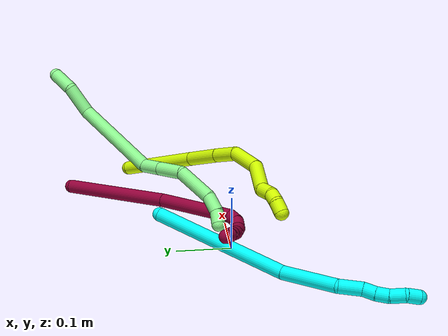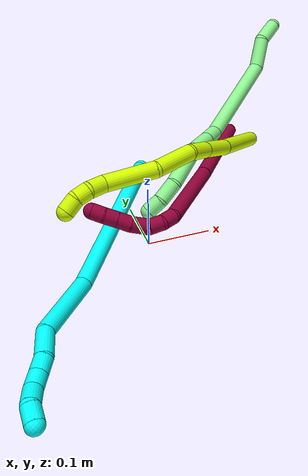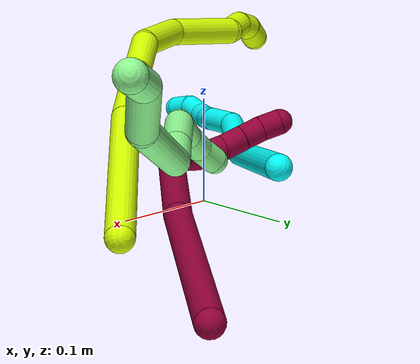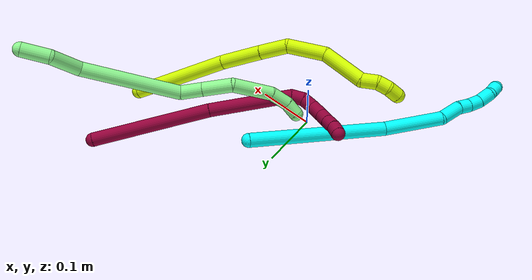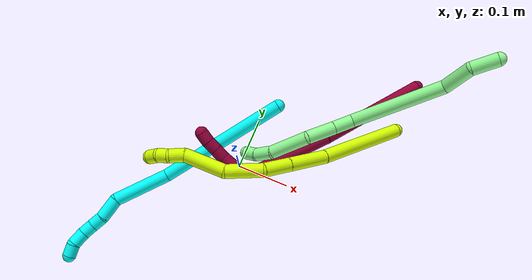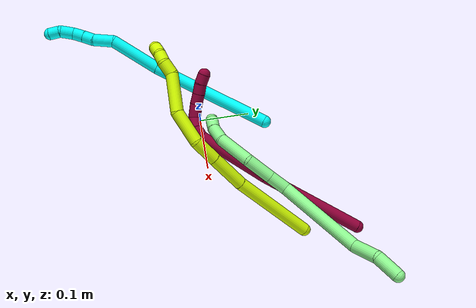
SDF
<sdf version="1.7">
 <world name="default">
  <model name="3">
   <static>0</static>
   <link name="3">
    <collision name="collision-cylinder-e_1_1_4">
     <pose>-0.0514 -0.071039 0.091895 0.658086 -0.416621 -0.144102</pose>
     <geometry><cylinder><radius>0.0125</radius><length>0.254034</length></cylinder></geometry>
     <surface>
      <friction><ode><mu>1.16</mu><mu2>1.16</mu2><slip1>0</slip1><slip2>0</slip2></ode></friction>
      <contact><ode><kp>1e+06</kp><kd>1</kd><max_vel>0</max_vel><min_depth>0.001</min_depth></ode></contact>
     </surface>
    </collision>
    <visual name="visual-cylinder-e_1_1_4">
     <pose>-0.0514 -0.071039 0.091895 0.658086 -0.416621 -0.144102</pose>
     <geometry><cylinder><radius>0.0125</radius><length>0.254034</length></cylinder></geometry>
     <material><ambient>0.003922 1 0.996078 1</ambient></material>
    </visual>
    <collision name="collision-cylinder-e_2_4_5">
     <pose>-0.116749 -0.182057 0.216506 0.884977 -0.26372 -0.125521</pose>
     <geometry><cylinder><radius>0.0125</radius><length>0.107017</length></cylinder></geometry>
     <surface>
      <friction><ode><mu>1.16</mu><mu2>1.16</mu2><slip1>0</slip1><slip2>0</slip2></ode></friction>
      <contact><ode><kp>1e+06</kp><kd>1</kd><max_vel>0</max_vel><min_depth>0.001</min_depth></ode></contact>
     </surface>
    </collision>
    <visual name="visual-cylinder-e_2_4_5">
     <pose>-0.116749 -0.182057 0.216506 0.884977 -0.26372 -0.125521</pose>
     <geometry><cylinder><radius>0.0125</radius><length>0.107017</length></cylinder></geometry>
     <material><ambient>0.003922 1 0.996078 1</ambient></material>
    </visual>
    <collision name="collision-cylinder-e_3_5_6">
     <pose>-0.144753 -0.235205 0.257726 0.997451 -0.730939 -0.410948</pose>
     <geometry><cylinder><radius>0.0125</radius><length>0.042112</length></cylinder></geometry>
     <surface>
      <friction><ode><mu>1.16</mu><mu2>1.16</mu2><slip1>0</slip1><slip2>0</slip2></ode></friction>
      <contact><ode><kp>1e+06</kp><kd>1</kd><max_vel>0</max_vel><min_depth>0.001</min_depth></ode></contact>
     </surface>
    </collision>
    <visual name="visual-cylinder-e_3_5_6">
     <pose>-0.144753 -0.235205 0.257726 0.997451 -0.730939 -0.410948</pose>
     <geometry><cylinder><radius>0.0125</radius><length>0.042112</length></cylinder></geometry>
     <material><ambient>0.003922 1 0.996078 1</ambient></material>
    </visual>
    <collision name="collision-cylinder-e_4_6_7">
     <pose>-0.164726 -0.255051 0.273579 0.737401 -0.537412 -0.211988</pose>
     <geometry><cylinder><radius>0.0125</radius><length>0.023114</length></cylinder></geometry>
     <surface>
      <friction><ode><mu>1.16</mu><mu2>1.16</mu2><slip1>0</slip1><slip2>0</slip2></ode></friction>
      <contact><ode><kp>1e+06</kp><kd>1</kd><max_vel>0</max_vel><min_depth>0.001</min_depth></ode></contact>
     </surface>
    </collision>
    <visual name="visual-cylinder-e_4_6_7">
     <pose>-0.164726 -0.255051 0.273579 0.737401 -0.537412 -0.211988</pose>
     <geometry><cylinder><radius>0.0125</radius><length>0.023114</length></cylinder></geometry>
     <material><ambient>0.003922 1 0.996078 1</ambient></material>
    </visual>
    <collision name="collision-cylinder-e_5_7_8">
     <pose>-0.176464 -0.269737 0.2869 0.930143 -0.527548 -0.269388</pose>
     <geometry><cylinder><radius>0.0125</radius><length>0.02313</length></cylinder></geometry>
     <surface>
      <friction><ode><mu>1.16</mu><mu2>1.16</mu2><slip1>0</slip1><slip2>0</slip2></ode></friction>
      <contact><ode><kp>1e+06</kp><kd>1</kd><max_vel>0</max_vel><min_depth>0.001</min_depth></ode></contact>
     </surface>
    </collision>
    <visual name="visual-cylinder-e_5_7_8">
     <pose>-0.176464 -0.269737 0.2869 0.930143 -0.527548 -0.269388</pose>
     <geometry><cylinder><radius>0.0125</radius><length>0.02313</length></cylinder></geometry>
     <material><ambient>0.003922 1 0.996078 1</ambient></material>
    </visual>
    <collision name="collision-cylinder-e_6_8_9">
     <pose>-0.189744 -0.288371 0.296895 1.20885 -0.580991 -0.407224</pose>
     <geometry><cylinder><radius>0.0125</radius><length>0.027177</length></cylinder></geometry>
     <surface>
      <friction><ode><mu>1.16</mu><mu2>1.16</mu2><slip1>0</slip1><slip2>0</slip2></ode></friction>
      <contact><ode><kp>1e+06</kp><kd>1</kd><max_vel>0</max_vel><min_depth>0.001</min_depth></ode></contact>
     </surface>
    </collision>
    <visual name="visual-cylinder-e_6_8_9">
     <pose>-0.189744 -0.288371 0.296895 1.20885 -0.580991 -0.407224</pose>
     <geometry><cylinder><radius>0.0125</radius><length>0.027177</length></cylinder></geometry>
     <material><ambient>0.003922 1 0.996078 1</ambient></material>
    </visual>
    <collision name="collision-cylinder-e_7_9_2">
     <pose>-0.207258 -0.303886 0.304385 0.954197 -1.03306 -0.571141</pose>
     <geometry><cylinder><radius>0.0125</radius><length>0.023417</length></cylinder></geometry>
     <surface>
      <friction><ode><mu>1.16</mu><mu2>1.16</mu2><slip1>0</slip1><slip2>0</slip2></ode></friction>
      <contact><ode><kp>1e+06</kp><kd>1</kd><max_vel>0</max_vel><min_depth>0.001</min_depth></ode></contact>
     </surface>
    </collision>
    <visual name="visual-cylinder-e_7_9_2">
     <pose>-0.207258 -0.303886 0.304385 0.954197 -1.03306 -0.571141</pose>
     <geometry><cylinder><radius>0.0125</radius><length>0.023417</length></cylinder></geometry>
     <material><ambient>0.003922 1 0.996078 1</ambient></material>
    </visual>
    <collision name="collision-sphere-2">
     <pose>-0.217314 -0.308779 0.307853 0 -0 0</pose>
     <geometry><sphere><radius>0.0125</radius></sphere></geometry>
     <surface>
      <friction><ode><mu>1.16</mu><mu2>1.16</mu2><slip1>0</slip1><slip2>0</slip2></ode></friction>
      <contact><ode><kp>1e+06</kp><kd>1</kd><max_vel>0</max_vel><min_depth>0.001</min_depth></ode></contact>
     </surface>
    </collision>
    <visual name="visual-sphere-2">
     <pose>-0.217314 -0.308779 0.307853 0 -0 0</pose>
     <geometry><sphere><radius>0.0125</radius></sphere></geometry>
     <material><ambient>0.003922 1 0.996078 1</ambient></material>
    </visual>
    <collision name="collision-sphere-9">
     <pose>-0.197202 -0.298994 0.300917 0 -0 0</pose>
     <geometry><sphere><radius>0.0125</radius></sphere></geometry>
     <surface>
      <friction><ode><mu>1.16</mu><mu2>1.16</mu2><slip1>0</slip1><slip2>0</slip2></ode></friction>
      <contact><ode><kp>1e+06</kp><kd>1</kd><max_vel>0</max_vel><min_depth>0.001</min_depth></ode></contact>
     </surface>
    </collision>
    <visual name="visual-sphere-9">
     <pose>-0.197202 -0.298994 0.300917 0 -0 0</pose>
     <geometry><sphere><radius>0.0125</radius></sphere></geometry>
     <material><ambient>0.003922 1 0.996078 1</ambient></material>
    </visual>
    <collision name="collision-sphere-4">
     <pose>-0.102801 -0.142078 0.183791 0 -0 0</pose>
     <geometry><sphere><radius>0.0125</radius></sphere></geometry>
     <surface>
      <friction><ode><mu>1.16</mu><mu2>1.16</mu2><slip1>0</slip1><slip2>0</slip2></ode></friction>
      <contact><ode><kp>1e+06</kp><kd>1</kd><max_vel>0</max_vel><min_depth>0.001</min_depth></ode></contact>
     </surface>
    </collision>
    <visual name="visual-sphere-4">
     <pose>-0.102801 -0.142078 0.183791 0 -0 0</pose>
     <geometry><sphere><radius>0.0125</radius></sphere></geometry>
     <material><ambient>0.003922 1 0.996078 1</ambient></material>
    </visual>
    <collision name="collision-sphere-1">
     <geometry><sphere><radius>0.0125</radius></sphere></geometry>
     <surface>
      <friction><ode><mu>1.16</mu><mu2>1.16</mu2><slip1>0</slip1><slip2>0</slip2></ode></friction>
      <contact><ode><kp>1e+06</kp><kd>1</kd><max_vel>0</max_vel><min_depth>0.001</min_depth></ode></contact>
     </surface>
    </collision>
    <visual name="visual-sphere-1">
     <geometry><sphere><radius>0.0125</radius></sphere></geometry>
     <material><ambient>0.003922 1 0.996078 1</ambient></material>
    </visual>
    <collision name="collision-sphere-8">
     <pose>-0.182286 -0.277748 0.292873 0 -0 0</pose>
     <geometry><sphere><radius>0.0125</radius></sphere></geometry>
     <surface>
      <friction><ode><mu>1.16</mu><mu2>1.16</mu2><slip1>0</slip1><slip2>0</slip2></ode></friction>
      <contact><ode><kp>1e+06</kp><kd>1</kd><max_vel>0</max_vel><min_depth>0.001</min_depth></ode></contact>
     </surface>
    </collision>
    <visual name="visual-sphere-8">
     <pose>-0.182286 -0.277748 0.292873 0 -0 0</pose>
     <geometry><sphere><radius>0.0125</radius></sphere></geometry>
     <material><ambient>0.003922 1 0.996078 1</ambient></material>
    </visual>
    <collision name="collision-sphere-5">
     <pose>-0.130697 -0.222035 0.249222 0 -0 0</pose>
     <geometry><sphere><radius>0.0125</radius></sphere></geometry>
     <surface>
      <friction><ode><mu>1.16</mu><mu2>1.16</mu2><slip1>0</slip1><slip2>0</slip2></ode></friction>
      <contact><ode><kp>1e+06</kp><kd>1</kd><max_vel>0</max_vel><min_depth>0.001</min_depth></ode></contact>
     </surface>
    </collision>
    <visual name="visual-sphere-5">
     <pose>-0.130697 -0.222035 0.249222 0 -0 0</pose>
     <geometry><sphere><radius>0.0125</radius></sphere></geometry>
     <material><ambient>0.003922 1 0.996078 1</ambient></material>
    </visual>
    <collision name="collision-sphere-6">
     <pose>-0.15881 -0.248375 0.26623 0 -0 0</pose>
     <geometry><sphere><radius>0.0125</radius></sphere></geometry>
     <surface>
      <friction><ode><mu>1.16</mu><mu2>1.16</mu2><slip1>0</slip1><slip2>0</slip2></ode></friction>
      <contact><ode><kp>1e+06</kp><kd>1</kd><max_vel>0</max_vel><min_depth>0.001</min_depth></ode></contact>
     </surface>
    </collision>
    <visual name="visual-sphere-6">
     <pose>-0.15881 -0.248375 0.26623 0 -0 0</pose>
     <geometry><sphere><radius>0.0125</radius></sphere></geometry>
     <material><ambient>0.003922 1 0.996078 1</ambient></material>
    </visual>
    <collision name="collision-sphere-7">
     <pose>-0.170642 -0.261726 0.280928 0 -0 0</pose>
     <geometry><sphere><radius>0.0125</radius></sphere></geometry>
     <surface>
      <friction><ode><mu>1.16</mu><mu2>1.16</mu2><slip1>0</slip1><slip2>0</slip2></ode></friction>
      <contact><ode><kp>1e+06</kp><kd>1</kd><max_vel>0</max_vel><min_depth>0.001</min_depth></ode></contact>
     </surface>
    </collision>
    <visual name="visual-sphere-7">
     <pose>-0.170642 -0.261726 0.280928 0 -0 0</pose>
     <geometry><sphere><radius>0.0125</radius></sphere></geometry>
     <material><ambient>0.003922 1 0.996078 1</ambient></material>
    </visual>
    <inertial>
     <pose>-0.099093 -0.149043 0.171047 0 -0 0</pose>
     <mass>0.5</mass>
     <inertia>
      <ixx>0.001144</ixx>
      <ixy>0</ixy>
      <ixz>0</ixz>
      <iyy>0.000985</iyy>
      <iyz>0</iyz>
      <izz>0.001478</izz>
     </inertia>
    </inertial>
   </link>
   <pose>0.029143 0.126243 0.061748 -2.26136 -0.419663 2.12025</pose>
  </model>
  <model name="8">
   <static>0</static>
   <link name="8">
    <collision name="collision-cylinder-e_1_1_4">
     <pose>-0.075289 -0.073507 -0.018961 1.82325 -0.78127 -0.977061</pose>
     <geometry><cylinder><radius>0.0125</radius><length>0.213834</length></cylinder></geometry>
     <surface>
      <friction><ode><mu>1.16</mu><mu2>1.16</mu2><slip1>0</slip1><slip2>0</slip2></ode></friction>
      <contact><ode><kp>1e+06</kp><kd>1</kd><max_vel>0</max_vel><min_depth>0.001</min_depth></ode></contact>
     </surface>
    </collision>
    <visual name="visual-cylinder-e_1_1_4">
     <pose>-0.075289 -0.073507 -0.018961 1.82325 -0.78127 -0.977061</pose>
     <geometry><cylinder><radius>0.0125</radius><length>0.213834</length></cylinder></geometry>
     <material><ambient>0.584314 0 0.227451 1</ambient></material>
    </visual>
    <collision name="collision-cylinder-e_2_4_5">
     <pose>-0.20782 -0.195238 -0.049179 1.80009 -0.857595 -1.04541</pose>
     <geometry><cylinder><radius>0.0125</radius><length>0.151378</length></cylinder></geometry>
     <surface>
      <friction><ode><mu>1.16</mu><mu2>1.16</mu2><slip1>0</slip1><slip2>0</slip2></ode></friction>
      <contact><ode><kp>1e+06</kp><kd>1</kd><max_vel>0</max_vel><min_depth>0.001</min_depth></ode></contact>
     </surface>
    </collision>
    <visual name="visual-cylinder-e_2_4_5">
     <pose>-0.20782 -0.195238 -0.049179 1.80009 -0.857595 -1.04541</pose>
     <geometry><cylinder><radius>0.0125</radius><length>0.151378</length></cylinder></geometry>
     <material><ambient>0.584314 0 0.227451 1</ambient></material>
    </visual>
    <collision name="collision-cylinder-e_3_5_6">
     <pose>-0.275497 -0.247051 -0.058917 1.17085 -1.21351 -0.862528</pose>
     <geometry><cylinder><radius>0.0125</radius><length>0.022279</length></cylinder></geometry>
     <surface>
      <friction><ode><mu>1.16</mu><mu2>1.16</mu2><slip1>0</slip1><slip2>0</slip2></ode></friction>
      <contact><ode><kp>1e+06</kp><kd>1</kd><max_vel>0</max_vel><min_depth>0.001</min_depth></ode></contact>
     </surface>
    </collision>
    <visual name="visual-cylinder-e_3_5_6">
     <pose>-0.275497 -0.247051 -0.058917 1.17085 -1.21351 -0.862528</pose>
     <geometry><cylinder><radius>0.0125</radius><length>0.022279</length></cylinder></geometry>
     <material><ambient>0.584314 0 0.227451 1</ambient></material>
    </visual>
    <collision name="collision-cylinder-e_4_6_7">
     <pose>-0.29611 -0.250083 -0.053369 -0.137064 -1.19042 0.092888</pose>
     <geometry><cylinder><radius>0.0125</radius><length>0.021922</length></cylinder></geometry>
     <surface>
      <friction><ode><mu>1.16</mu><mu2>1.16</mu2><slip1>0</slip1><slip2>0</slip2></ode></friction>
      <contact><ode><kp>1e+06</kp><kd>1</kd><max_vel>0</max_vel><min_depth>0.001</min_depth></ode></contact>
     </surface>
    </collision>
    <visual name="visual-cylinder-e_4_6_7">
     <pose>-0.29611 -0.250083 -0.053369 -0.137064 -1.19042 0.092888</pose>
     <geometry><cylinder><radius>0.0125</radius><length>0.021922</length></cylinder></geometry>
     <material><ambient>0.584314 0 0.227451 1</ambient></material>
    </visual>
    <collision name="collision-cylinder-e_5_7_8">
     <pose>-0.315668 -0.249921 -0.038922 0.03778 -0.73279 -0.014498</pose>
     <geometry><cylinder><radius>0.0125</radius><length>0.028045</length></cylinder></geometry>
     <surface>
      <friction><ode><mu>1.16</mu><mu2>1.16</mu2><slip1>0</slip1><slip2>0</slip2></ode></friction>
      <contact><ode><kp>1e+06</kp><kd>1</kd><max_vel>0</max_vel><min_depth>0.001</min_depth></ode></contact>
     </surface>
    </collision>
    <visual name="visual-cylinder-e_5_7_8">
     <pose>-0.315668 -0.249921 -0.038922 0.03778 -0.73279 -0.014498</pose>
     <geometry><cylinder><radius>0.0125</radius><length>0.028045</length></cylinder></geometry>
     <material><ambient>0.584314 0 0.227451 1</ambient></material>
    </visual>
    <collision name="collision-cylinder-e_6_8_9">
     <pose>-0.330838 -0.250851 -0.019133 0.057165 -0.552553 -0.016212</pose>
     <geometry><cylinder><radius>0.0125</radius><length>0.022061</length></cylinder></geometry>
     <surface>
      <friction><ode><mu>1.16</mu><mu2>1.16</mu2><slip1>0</slip1><slip2>0</slip2></ode></friction>
      <contact><ode><kp>1e+06</kp><kd>1</kd><max_vel>0</max_vel><min_depth>0.001</min_depth></ode></contact>
     </surface>
    </collision>
    <visual name="visual-cylinder-e_6_8_9">
     <pose>-0.330838 -0.250851 -0.019133 0.057165 -0.552553 -0.016212</pose>
     <geometry><cylinder><radius>0.0125</radius><length>0.022061</length></cylinder></geometry>
     <material><ambient>0.584314 0 0.227451 1</ambient></material>
    </visual>
    <collision name="collision-cylinder-e_7_9_10">
     <pose>-0.342251 -0.252218 -0.001276 0.097571 -0.583192 -0.029307</pose>
     <geometry><cylinder><radius>0.0125</radius><length>0.020424</length></cylinder></geometry>
     <surface>
      <friction><ode><mu>1.16</mu><mu2>1.16</mu2><slip1>0</slip1><slip2>0</slip2></ode></friction>
      <contact><ode><kp>1e+06</kp><kd>1</kd><max_vel>0</max_vel><min_depth>0.001</min_depth></ode></contact>
     </surface>
    </collision>
    <visual name="visual-cylinder-e_7_9_10">
     <pose>-0.342251 -0.252218 -0.001276 0.097571 -0.583192 -0.029307</pose>
     <geometry><cylinder><radius>0.0125</radius><length>0.020424</length></cylinder></geometry>
     <material><ambient>0.584314 0 0.227451 1</ambient></material>
    </visual>
    <collision name="collision-cylinder-e_8_10_2">
     <pose>-0.352773 -0.252236 0.015921 -0.092933 -0.510305 0.024257</pose>
     <geometry><cylinder><radius>0.0125</radius><length>0.020058</length></cylinder></geometry>
     <surface>
      <friction><ode><mu>1.16</mu><mu2>1.16</mu2><slip1>0</slip1><slip2>0</slip2></ode></friction>
      <contact><ode><kp>1e+06</kp><kd>1</kd><max_vel>0</max_vel><min_depth>0.001</min_depth></ode></contact>
     </surface>
    </collision>
    <visual name="visual-cylinder-e_8_10_2">
     <pose>-0.352773 -0.252236 0.015921 -0.092933 -0.510305 0.024257</pose>
     <geometry><cylinder><radius>0.0125</radius><length>0.020058</length></cylinder></geometry>
     <material><ambient>0.584314 0 0.227451 1</ambient></material>
    </visual>
    <collision name="collision-sphere-2">
     <pose>-0.357671 -0.251424 0.024634 0 -0 0</pose>
     <geometry><sphere><radius>0.0125</radius></sphere></geometry>
     <surface>
      <friction><ode><mu>1.16</mu><mu2>1.16</mu2><slip1>0</slip1><slip2>0</slip2></ode></friction>
      <contact><ode><kp>1e+06</kp><kd>1</kd><max_vel>0</max_vel><min_depth>0.001</min_depth></ode></contact>
     </surface>
    </collision>
    <visual name="visual-sphere-2">
     <pose>-0.357671 -0.251424 0.024634 0 -0 0</pose>
     <geometry><sphere><radius>0.0125</radius></sphere></geometry>
     <material><ambient>0.584314 0 0.227451 1</ambient></material>
    </visual>
    <collision name="collision-sphere-10">
     <pose>-0.347874 -0.253048 0.007208 0 -0 0</pose>
     <geometry><sphere><radius>0.0125</radius></sphere></geometry>
     <surface>
      <friction><ode><mu>1.16</mu><mu2>1.16</mu2><slip1>0</slip1><slip2>0</slip2></ode></friction>
      <contact><ode><kp>1e+06</kp><kd>1</kd><max_vel>0</max_vel><min_depth>0.001</min_depth></ode></contact>
     </surface>
    </collision>
    <visual name="visual-sphere-10">
     <pose>-0.347874 -0.253048 0.007208 0 -0 0</pose>
     <geometry><sphere><radius>0.0125</radius></sphere></geometry>
     <material><ambient>0.584314 0 0.227451 1</ambient></material>
    </visual>
    <collision name="collision-sphere-9">
     <pose>-0.336627 -0.251387 -0.009759 0 -0 0</pose>
     <geometry><sphere><radius>0.0125</radius></sphere></geometry>
     <surface>
      <friction><ode><mu>1.16</mu><mu2>1.16</mu2><slip1>0</slip1><slip2>0</slip2></ode></friction>
      <contact><ode><kp>1e+06</kp><kd>1</kd><max_vel>0</max_vel><min_depth>0.001</min_depth></ode></contact>
     </surface>
    </collision>
    <visual name="visual-sphere-9">
     <pose>-0.336627 -0.251387 -0.009759 0 -0 0</pose>
     <geometry><sphere><radius>0.0125</radius></sphere></geometry>
     <material><ambient>0.584314 0 0.227451 1</ambient></material>
    </visual>
    <collision name="collision-sphere-4">
     <pose>-0.150578 -0.147014 -0.037923 0 -0 0</pose>
     <geometry><sphere><radius>0.0125</radius></sphere></geometry>
     <surface>
      <friction><ode><mu>1.16</mu><mu2>1.16</mu2><slip1>0</slip1><slip2>0</slip2></ode></friction>
      <contact><ode><kp>1e+06</kp><kd>1</kd><max_vel>0</max_vel><min_depth>0.001</min_depth></ode></contact>
     </surface>
    </collision>
    <visual name="visual-sphere-4">
     <pose>-0.150578 -0.147014 -0.037923 0 -0 0</pose>
     <geometry><sphere><radius>0.0125</radius></sphere></geometry>
     <material><ambient>0.584314 0 0.227451 1</ambient></material>
    </visual>
    <collision name="collision-sphere-1">
     <geometry><sphere><radius>0.0125</radius></sphere></geometry>
     <surface>
      <friction><ode><mu>1.16</mu><mu2>1.16</mu2><slip1>0</slip1><slip2>0</slip2></ode></friction>
      <contact><ode><kp>1e+06</kp><kd>1</kd><max_vel>0</max_vel><min_depth>0.001</min_depth></ode></contact>
     </surface>
    </collision>
    <visual name="visual-sphere-1">
     <geometry><sphere><radius>0.0125</radius></sphere></geometry>
     <material><ambient>0.584314 0 0.227451 1</ambient></material>
    </visual>
    <collision name="collision-sphere-8">
     <pose>-0.325048 -0.250314 -0.028506 0 -0 0</pose>
     <geometry><sphere><radius>0.0125</radius></sphere></geometry>
     <surface>
      <friction><ode><mu>1.16</mu><mu2>1.16</mu2><slip1>0</slip1><slip2>0</slip2></ode></friction>
      <contact><ode><kp>1e+06</kp><kd>1</kd><max_vel>0</max_vel><min_depth>0.001</min_depth></ode></contact>
     </surface>
    </collision>
    <visual name="visual-sphere-8">
     <pose>-0.325048 -0.250314 -0.028506 0 -0 0</pose>
     <geometry><sphere><radius>0.0125</radius></sphere></geometry>
     <material><ambient>0.584314 0 0.227451 1</ambient></material>
    </visual>
    <collision name="collision-sphere-5">
     <pose>-0.265061 -0.243462 -0.060434 0 -0 0</pose>
     <geometry><sphere><radius>0.0125</radius></sphere></geometry>
     <surface>
      <friction><ode><mu>1.16</mu><mu2>1.16</mu2><slip1>0</slip1><slip2>0</slip2></ode></friction>
      <contact><ode><kp>1e+06</kp><kd>1</kd><max_vel>0</max_vel><min_depth>0.001</min_depth></ode></contact>
     </surface>
    </collision>
    <visual name="visual-sphere-5">
     <pose>-0.265061 -0.243462 -0.060434 0 -0 0</pose>
     <geometry><sphere><radius>0.0125</radius></sphere></geometry>
     <material><ambient>0.584314 0 0.227451 1</ambient></material>
    </visual>
    <collision name="collision-sphere-6">
     <pose>-0.285933 -0.250639 -0.0574 0 -0 0</pose>
     <geometry><sphere><radius>0.0125</radius></sphere></geometry>
     <surface>
      <friction><ode><mu>1.16</mu><mu2>1.16</mu2><slip1>0</slip1><slip2>0</slip2></ode></friction>
      <contact><ode><kp>1e+06</kp><kd>1</kd><max_vel>0</max_vel><min_depth>0.001</min_depth></ode></contact>
     </surface>
    </collision>
    <visual name="visual-sphere-6">
     <pose>-0.285933 -0.250639 -0.0574 0 -0 0</pose>
     <geometry><sphere><radius>0.0125</radius></sphere></geometry>
     <material><ambient>0.584314 0 0.227451 1</ambient></material>
    </visual>
    <collision name="collision-sphere-7">
     <pose>-0.306288 -0.249527 -0.049338 0 -0 0</pose>
     <geometry><sphere><radius>0.0125</radius></sphere></geometry>
     <surface>
      <friction><ode><mu>1.16</mu><mu2>1.16</mu2><slip1>0</slip1><slip2>0</slip2></ode></friction>
      <contact><ode><kp>1e+06</kp><kd>1</kd><max_vel>0</max_vel><min_depth>0.001</min_depth></ode></contact>
     </surface>
    </collision>
    <visual name="visual-sphere-7">
     <pose>-0.306288 -0.249527 -0.049338 0 -0 0</pose>
     <geometry><sphere><radius>0.0125</radius></sphere></geometry>
     <material><ambient>0.584314 0 0.227451 1</ambient></material>
    </visual>
    <inertial>
     <pose>-0.18081 -0.158026 -0.030404 0 -0 0</pose>
     <mass>0.5</mass>
     <inertia>
      <ixx>-0.000249</ixx>
      <ixy>0</ixy>
      <ixz>0</ixz>
      <iyy>-0.000156</iyy>
      <iyz>0</iyz>
      <izz>0.001567</izz>
     </inertia>
    </inertial>
   </link>
   <pose>0.264698 0.282248 0.01547 -0.840162 -0.389518 0.29491</pose>
  </model>
  <model name="13">
   <static>0</static>
   <link name="13">
    <collision name="collision-cylinder-e_1_1_4">
     <pose>-0.003502 -0.002117 -0.023222 3.05069 -0.149051 -2.04729</pose>
     <geometry><cylinder><radius>0.0125</radius><length>0.047159</length></cylinder></geometry>
     <surface>
      <friction><ode><mu>1.16</mu><mu2>1.16</mu2><slip1>0</slip1><slip2>0</slip2></ode></friction>
      <contact><ode><kp>1e+06</kp><kd>1</kd><max_vel>0</max_vel><min_depth>0.001</min_depth></ode></contact>
     </surface>
    </collision>
    <visual name="visual-cylinder-e_1_1_4">
     <pose>-0.003502 -0.002117 -0.023222 3.05069 -0.149051 -2.04729</pose>
     <geometry><cylinder><radius>0.0125</radius><length>0.047159</length></cylinder></geometry>
     <material><ambient>0.564706 0.984314 0.572549 1</ambient></material>
    </visual>
    <collision name="collision-cylinder-e_2_4_5">
     <pose>-0.004959 0.006074 -0.072297 -2.76221 0.073302 -0.377406</pose>
     <geometry><cylinder><radius>0.0125</radius><length>0.055815</length></cylinder></geometry>
     <surface>
      <friction><ode><mu>1.16</mu><mu2>1.16</mu2><slip1>0</slip1><slip2>0</slip2></ode></friction>
      <contact><ode><kp>1e+06</kp><kd>1</kd><max_vel>0</max_vel><min_depth>0.001</min_depth></ode></contact>
     </surface>
    </collision>
    <visual name="visual-cylinder-e_2_4_5">
     <pose>-0.004959 0.006074 -0.072297 -2.76221 0.073302 -0.377406</pose>
     <geometry><cylinder><radius>0.0125</radius><length>0.055815</length></cylinder></geometry>
     <material><ambient>0.564706 0.984314 0.572549 1</ambient></material>
    </visual>
    <collision name="collision-cylinder-e_3_5_6">
     <pose>-0.012568 0.011073 -0.184135 3.07992 -0.111577 -2.13239</pose>
     <geometry><cylinder><radius>0.0125</radius><length>0.173375</length></cylinder></geometry>
     <surface>
      <friction><ode><mu>1.16</mu><mu2>1.16</mu2><slip1>0</slip1><slip2>0</slip2></ode></friction>
      <contact><ode><kp>1e+06</kp><kd>1</kd><max_vel>0</max_vel><min_depth>0.001</min_depth></ode></contact>
     </surface>
    </collision>
    <visual name="visual-cylinder-e_3_5_6">
     <pose>-0.012568 0.011073 -0.184135 3.07992 -0.111577 -2.13239</pose>
     <geometry><cylinder><radius>0.0125</radius><length>0.173375</length></cylinder></geometry>
     <material><ambient>0.564706 0.984314 0.572549 1</ambient></material>
    </visual>
    <collision name="collision-cylinder-e_4_6_7">
     <pose>-0.022386 -0.004444 -0.286537 2.58536 -0.008601 -0.030123</pose>
     <geometry><cylinder><radius>0.0125</radius><length>0.038664</length></cylinder></geometry>
     <surface>
      <friction><ode><mu>1.16</mu><mu2>1.16</mu2><slip1>0</slip1><slip2>0</slip2></ode></friction>
      <contact><ode><kp>1e+06</kp><kd>1</kd><max_vel>0</max_vel><min_depth>0.001</min_depth></ode></contact>
     </surface>
    </collision>
    <visual name="visual-cylinder-e_4_6_7">
     <pose>-0.022386 -0.004444 -0.286537 2.58536 -0.008601 -0.030123</pose>
     <geometry><cylinder><radius>0.0125</radius><length>0.038664</length></cylinder></geometry>
     <material><ambient>0.564706 0.984314 0.572549 1</ambient></material>
    </visual>
    <collision name="collision-cylinder-e_5_7_8">
     <pose>-0.023122 -0.02879 -0.325405 2.57956 -0.021458 -0.074305</pose>
     <geometry><cylinder><radius>0.0125</radius><length>0.053076</length></cylinder></geometry>
     <surface>
      <friction><ode><mu>1.16</mu><mu2>1.16</mu2><slip1>0</slip1><slip2>0</slip2></ode></friction>
      <contact><ode><kp>1e+06</kp><kd>1</kd><max_vel>0</max_vel><min_depth>0.001</min_depth></ode></contact>
     </surface>
    </collision>
    <visual name="visual-cylinder-e_5_7_8">
     <pose>-0.023122 -0.02879 -0.325405 2.57956 -0.021458 -0.074305</pose>
     <geometry><cylinder><radius>0.0125</radius><length>0.053076</length></cylinder></geometry>
     <material><ambient>0.564706 0.984314 0.572549 1</ambient></material>
    </visual>
    <collision name="collision-cylinder-e_6_8_9">
     <pose>-0.026501 -0.044834 -0.383916 3.0888 -0.077664 -1.94782</pose>
     <geometry><cylinder><radius>0.0125</radius><length>0.07244</length></cylinder></geometry>
     <surface>
      <friction><ode><mu>1.16</mu><mu2>1.16</mu2><slip1>0</slip1><slip2>0</slip2></ode></friction>
      <contact><ode><kp>1e+06</kp><kd>1</kd><max_vel>0</max_vel><min_depth>0.001</min_depth></ode></contact>
     </surface>
    </collision>
    <visual name="visual-cylinder-e_6_8_9">
     <pose>-0.026501 -0.044834 -0.383916 3.0888 -0.077664 -1.94782</pose>
     <geometry><cylinder><radius>0.0125</radius><length>0.07244</length></cylinder></geometry>
     <material><ambient>0.564706 0.984314 0.572549 1</ambient></material>
    </visual>
    <collision name="collision-cylinder-e_7_9_10">
     <pose>-0.034621 -0.043992 -0.435924 -2.97095 -0.317052 2.1591</pose>
     <geometry><cylinder><radius>0.0125</radius><length>0.034062</length></cylinder></geometry>
     <surface>
      <friction><ode><mu>1.16</mu><mu2>1.16</mu2><slip1>0</slip1><slip2>0</slip2></ode></friction>
      <contact><ode><kp>1e+06</kp><kd>1</kd><max_vel>0</max_vel><min_depth>0.001</min_depth></ode></contact>
     </surface>
    </collision>
    <visual name="visual-cylinder-e_7_9_10">
     <pose>-0.034621 -0.043992 -0.435924 -2.97095 -0.317052 2.1591</pose>
     <geometry><cylinder><radius>0.0125</radius><length>0.034062</length></cylinder></geometry>
     <material><ambient>0.564706 0.984314 0.572549 1</ambient></material>
    </visual>
    <collision name="collision-cylinder-e_8_10_2">
     <pose>-0.046901 -0.037428 -0.461783 -2.77415 -0.580766 2.02899</pose>
     <geometry><cylinder><radius>0.0125</radius><length>0.025408</length></cylinder></geometry>
     <surface>
      <friction><ode><mu>1.16</mu><mu2>1.16</mu2><slip1>0</slip1><slip2>0</slip2></ode></friction>
      <contact><ode><kp>1e+06</kp><kd>1</kd><max_vel>0</max_vel><min_depth>0.001</min_depth></ode></contact>
     </surface>
    </collision>
    <visual name="visual-cylinder-e_8_10_2">
     <pose>-0.046901 -0.037428 -0.461783 -2.77415 -0.580766 2.02899</pose>
     <geometry><cylinder><radius>0.0125</radius><length>0.025408</length></cylinder></geometry>
     <material><ambient>0.564706 0.984314 0.572549 1</ambient></material>
    </visual>
    <collision name="collision-sphere-2">
     <pose>-0.053872 -0.033613 -0.471695 0 -0 0</pose>
     <geometry><sphere><radius>0.0125</radius></sphere></geometry>
     <surface>
      <friction><ode><mu>1.16</mu><mu2>1.16</mu2><slip1>0</slip1><slip2>0</slip2></ode></friction>
      <contact><ode><kp>1e+06</kp><kd>1</kd><max_vel>0</max_vel><min_depth>0.001</min_depth></ode></contact>
     </surface>
    </collision>
    <visual name="visual-sphere-2">
     <pose>-0.053872 -0.033613 -0.471695 0 -0 0</pose>
     <geometry><sphere><radius>0.0125</radius></sphere></geometry>
     <material><ambient>0.564706 0.984314 0.572549 1</ambient></material>
    </visual>
    <collision name="collision-sphere-10">
     <pose>-0.039931 -0.041244 -0.451871 0 -0 0</pose>
     <geometry><sphere><radius>0.0125</radius></sphere></geometry>
     <surface>
      <friction><ode><mu>1.16</mu><mu2>1.16</mu2><slip1>0</slip1><slip2>0</slip2></ode></friction>
      <contact><ode><kp>1e+06</kp><kd>1</kd><max_vel>0</max_vel><min_depth>0.001</min_depth></ode></contact>
     </surface>
    </collision>
    <visual name="visual-sphere-10">
     <pose>-0.039931 -0.041244 -0.451871 0 -0 0</pose>
     <geometry><sphere><radius>0.0125</radius></sphere></geometry>
     <material><ambient>0.564706 0.984314 0.572549 1</ambient></material>
    </visual>
    <collision name="collision-sphere-9">
     <pose>-0.029312 -0.04674 -0.419977 0 -0 0</pose>
     <geometry><sphere><radius>0.0125</radius></sphere></geometry>
     <surface>
      <friction><ode><mu>1.16</mu><mu2>1.16</mu2><slip1>0</slip1><slip2>0</slip2></ode></friction>
      <contact><ode><kp>1e+06</kp><kd>1</kd><max_vel>0</max_vel><min_depth>0.001</min_depth></ode></contact>
     </surface>
    </collision>
    <visual name="visual-sphere-9">
     <pose>-0.029312 -0.04674 -0.419977 0 -0 0</pose>
     <geometry><sphere><radius>0.0125</radius></sphere></geometry>
     <material><ambient>0.564706 0.984314 0.572549 1</ambient></material>
    </visual>
    <collision name="collision-sphere-4">
     <pose>-0.007003 -0.004234 -0.046444 0 -0 0</pose>
     <geometry><sphere><radius>0.0125</radius></sphere></geometry>
     <surface>
      <friction><ode><mu>1.16</mu><mu2>1.16</mu2><slip1>0</slip1><slip2>0</slip2></ode></friction>
      <contact><ode><kp>1e+06</kp><kd>1</kd><max_vel>0</max_vel><min_depth>0.001</min_depth></ode></contact>
     </surface>
    </collision>
    <visual name="visual-sphere-4">
     <pose>-0.007003 -0.004234 -0.046444 0 -0 0</pose>
     <geometry><sphere><radius>0.0125</radius></sphere></geometry>
     <material><ambient>0.564706 0.984314 0.572549 1</ambient></material>
    </visual>
    <collision name="collision-sphere-1">
     <geometry><sphere><radius>0.0125</radius></sphere></geometry>
     <surface>
      <friction><ode><mu>1.16</mu><mu2>1.16</mu2><slip1>0</slip1><slip2>0</slip2></ode></friction>
      <contact><ode><kp>1e+06</kp><kd>1</kd><max_vel>0</max_vel><min_depth>0.001</min_depth></ode></contact>
     </surface>
    </collision>
    <visual name="visual-sphere-1">
     <geometry><sphere><radius>0.0125</radius></sphere></geometry>
     <material><ambient>0.564706 0.984314 0.572549 1</ambient></material>
    </visual>
    <collision name="collision-sphere-8">
     <pose>-0.023691 -0.042929 -0.347856 0 -0 0</pose>
     <geometry><sphere><radius>0.0125</radius></sphere></geometry>
     <surface>
      <friction><ode><mu>1.16</mu><mu2>1.16</mu2><slip1>0</slip1><slip2>0</slip2></ode></friction>
      <contact><ode><kp>1e+06</kp><kd>1</kd><max_vel>0</max_vel><min_depth>0.001</min_depth></ode></contact>
     </surface>
    </collision>
    <visual name="visual-sphere-8">
     <pose>-0.023691 -0.042929 -0.347856 0 -0 0</pose>
     <geometry><sphere><radius>0.0125</radius></sphere></geometry>
     <material><ambient>0.564706 0.984314 0.572549 1</ambient></material>
    </visual>
    <collision name="collision-sphere-5">
     <pose>-0.002915 0.016382 -0.098151 0 -0 0</pose>
     <geometry><sphere><radius>0.0125</radius></sphere></geometry>
     <surface>
      <friction><ode><mu>1.16</mu><mu2>1.16</mu2><slip1>0</slip1><slip2>0</slip2></ode></friction>
      <contact><ode><kp>1e+06</kp><kd>1</kd><max_vel>0</max_vel><min_depth>0.001</min_depth></ode></contact>
     </surface>
    </collision>
    <visual name="visual-sphere-5">
     <pose>-0.002915 0.016382 -0.098151 0 -0 0</pose>
     <geometry><sphere><radius>0.0125</radius></sphere></geometry>
     <material><ambient>0.564706 0.984314 0.572549 1</ambient></material>
    </visual>
    <collision name="collision-sphere-6">
     <pose>-0.02222 0.005763 -0.27012 0 -0 0</pose>
     <geometry><sphere><radius>0.0125</radius></sphere></geometry>
     <surface>
      <friction><ode><mu>1.16</mu><mu2>1.16</mu2><slip1>0</slip1><slip2>0</slip2></ode></friction>
      <contact><ode><kp>1e+06</kp><kd>1</kd><max_vel>0</max_vel><min_depth>0.001</min_depth></ode></contact>
     </surface>
    </collision>
    <visual name="visual-sphere-6">
     <pose>-0.02222 0.005763 -0.27012 0 -0 0</pose>
     <geometry><sphere><radius>0.0125</radius></sphere></geometry>
     <material><ambient>0.564706 0.984314 0.572549 1</ambient></material>
    </visual>
    <collision name="collision-sphere-7">
     <pose>-0.022552 -0.01465 -0.302955 0 -0 0</pose>
     <geometry><sphere><radius>0.0125</radius></sphere></geometry>
     <surface>
      <friction><ode><mu>1.16</mu><mu2>1.16</mu2><slip1>0</slip1><slip2>0</slip2></ode></friction>
      <contact><ode><kp>1e+06</kp><kd>1</kd><max_vel>0</max_vel><min_depth>0.001</min_depth></ode></contact>
     </surface>
    </collision>
    <visual name="visual-sphere-7">
     <pose>-0.022552 -0.01465 -0.302955 0 -0 0</pose>
     <geometry><sphere><radius>0.0125</radius></sphere></geometry>
     <material><ambient>0.564706 0.984314 0.572549 1</ambient></material>
    </visual>
    <inertial>
     <pose>-0.018009 -0.010476 -0.239595 0 -0 0</pose>
     <mass>0.5</mass>
     <inertia>
      <ixx>-0.000636</ixx>
      <ixy>0</ixy>
      <ixz>0</ixz>
      <iyy>-0.00019</iyy>
      <iyz>0</iyz>
      <izz>5.2e-05</izz>
     </inertia>
    </inertial>
   </link>
   <pose>0.354831 0.300696 0.215066 -1.13151 0.00973 -0.769996</pose>
  </model>
  <model name="15">
   <static>0</static>
   <link name="15">
    <collision name="collision-cylinder-e_1_1_4">
     <pose>-0.025942 -0.062736 -0.04837 2.22761 -0.316471 -0.627599</pose>
     <geometry><cylinder><radius>0.0125</radius><length>0.166715</length></cylinder></geometry>
     <surface>
      <friction><ode><mu>1.16</mu><mu2>1.16</mu2><slip1>0</slip1><slip2>0</slip2></ode></friction>
      <contact><ode><kp>1e+06</kp><kd>1</kd><max_vel>0</max_vel><min_depth>0.001</min_depth></ode></contact>
     </surface>
    </collision>
    <visual name="visual-cylinder-e_1_1_4">
     <pose>-0.025942 -0.062736 -0.04837 2.22761 -0.316471 -0.627599</pose>
     <geometry><cylinder><radius>0.0125</radius><length>0.166715</length></cylinder></geometry>
     <material><ambient>0.835294 1 0 1</ambient></material>
    </visual>
    <collision name="collision-cylinder-e_2_4_5">
     <pose>-0.066408 -0.152998 -0.11505 2.15776 -0.413949 -0.746947</pose>
     <geometry><cylinder><radius>0.0125</radius><length>0.072219</length></cylinder></geometry>
     <surface>
      <friction><ode><mu>1.16</mu><mu2>1.16</mu2><slip1>0</slip1><slip2>0</slip2></ode></friction>
      <contact><ode><kp>1e+06</kp><kd>1</kd><max_vel>0</max_vel><min_depth>0.001</min_depth></ode></contact>
     </surface>
    </collision>
    <visual name="visual-cylinder-e_2_4_5">
     <pose>-0.066408 -0.152998 -0.11505 2.15776 -0.413949 -0.746947</pose>
     <geometry><cylinder><radius>0.0125</radius><length>0.072219</length></cylinder></geometry>
     <material><ambient>0.835294 1 0 1</ambient></material>
    </visual>
    <collision name="collision-cylinder-e_3_5_6">
     <pose>-0.09129 -0.198932 -0.146129 2.17729 -0.433055 -0.795804</pose>
     <geometry><cylinder><radius>0.0125</radius><length>0.049363</length></cylinder></geometry>
     <surface>
      <friction><ode><mu>1.16</mu><mu2>1.16</mu2><slip1>0</slip1><slip2>0</slip2></ode></friction>
      <contact><ode><kp>1e+06</kp><kd>1</kd><max_vel>0</max_vel><min_depth>0.001</min_depth></ode></contact>
     </surface>
    </collision>
    <visual name="visual-cylinder-e_3_5_6">
     <pose>-0.09129 -0.198932 -0.146129 2.17729 -0.433055 -0.795804</pose>
     <geometry><cylinder><radius>0.0125</radius><length>0.049363</length></cylinder></geometry>
     <material><ambient>0.835294 1 0 1</ambient></material>
    </visual>
    <collision name="collision-cylinder-e_4_6_7">
     <pose>-0.125771 -0.231547 -0.176559 2.46414 -0.816527 -1.77461</pose>
     <geometry><cylinder><radius>0.0125</radius><length>0.066201</length></cylinder></geometry>
     <surface>
      <friction><ode><mu>1.16</mu><mu2>1.16</mu2><slip1>0</slip1><slip2>0</slip2></ode></friction>
      <contact><ode><kp>1e+06</kp><kd>1</kd><max_vel>0</max_vel><min_depth>0.001</min_depth></ode></contact>
     </surface>
    </collision>
    <visual name="visual-cylinder-e_4_6_7">
     <pose>-0.125771 -0.231547 -0.176559 2.46414 -0.816527 -1.77461</pose>
     <geometry><cylinder><radius>0.0125</radius><length>0.066201</length></cylinder></geometry>
     <material><ambient>0.835294 1 0 1</ambient></material>
    </visual>
    <collision name="collision-cylinder-e_5_7_8">
     <pose>-0.186167 -0.254643 -0.201961 2.28735 -1.25662 -2.0223</pose>
     <geometry><cylinder><radius>0.0125</radius><length>0.076281</length></cylinder></geometry>
     <surface>
      <friction><ode><mu>1.16</mu><mu2>1.16</mu2><slip1>0</slip1><slip2>0</slip2></ode></friction>
      <contact><ode><kp>1e+06</kp><kd>1</kd><max_vel>0</max_vel><min_depth>0.001</min_depth></ode></contact>
     </surface>
    </collision>
    <visual name="visual-cylinder-e_5_7_8">
     <pose>-0.186167 -0.254643 -0.201961 2.28735 -1.25662 -2.0223</pose>
     <geometry><cylinder><radius>0.0125</radius><length>0.076281</length></cylinder></geometry>
     <material><ambient>0.835294 1 0 1</ambient></material>
    </visual>
    <collision name="collision-cylinder-e_6_8_9">
     <pose>-0.231855 -0.270467 -0.21696 2.37878 -0.753323 -1.55699</pose>
     <geometry><cylinder><radius>0.0125</radius><length>0.027526</length></cylinder></geometry>
     <surface>
      <friction><ode><mu>1.16</mu><mu2>1.16</mu2><slip1>0</slip1><slip2>0</slip2></ode></friction>
      <contact><ode><kp>1e+06</kp><kd>1</kd><max_vel>0</max_vel><min_depth>0.001</min_depth></ode></contact>
     </surface>
    </collision>
    <visual name="visual-cylinder-e_6_8_9">
     <pose>-0.231855 -0.270467 -0.21696 2.37878 -0.753323 -1.55699</pose>
     <geometry><cylinder><radius>0.0125</radius><length>0.027526</length></cylinder></geometry>
     <material><ambient>0.835294 1 0 1</ambient></material>
    </visual>
    <collision name="collision-cylinder-e_7_9_10">
     <pose>-0.249736 -0.278764 -0.229402 2.88507 -1.00638 -2.68131</pose>
     <geometry><cylinder><radius>0.0125</radius><length>0.02004</length></cylinder></geometry>
     <surface>
      <friction><ode><mu>1.16</mu><mu2>1.16</mu2><slip1>0</slip1><slip2>0</slip2></ode></friction>
      <contact><ode><kp>1e+06</kp><kd>1</kd><max_vel>0</max_vel><min_depth>0.001</min_depth></ode></contact>
     </surface>
    </collision>
    <visual name="visual-cylinder-e_7_9_10">
     <pose>-0.249736 -0.278764 -0.229402 2.88507 -1.00638 -2.68131</pose>
     <geometry><cylinder><radius>0.0125</radius><length>0.02004</length></cylinder></geometry>
     <material><ambient>0.835294 1 0 1</ambient></material>
    </visual>
    <collision name="collision-cylinder-e_8_10_2">
     <pose>-0.266274 -0.277967 -0.241473 -2.83814 -0.841319 2.48293</pose>
     <geometry><cylinder><radius>0.0125</radius><length>0.021655</length></cylinder></geometry>
     <surface>
      <friction><ode><mu>1.16</mu><mu2>1.16</mu2><slip1>0</slip1><slip2>0</slip2></ode></friction>
      <contact><ode><kp>1e+06</kp><kd>1</kd><max_vel>0</max_vel><min_depth>0.001</min_depth></ode></contact>
     </surface>
    </collision>
    <visual name="visual-cylinder-e_8_10_2">
     <pose>-0.266274 -0.277967 -0.241473 -2.83814 -0.841319 2.48293</pose>
     <geometry><cylinder><radius>0.0125</radius><length>0.021655</length></cylinder></geometry>
     <material><ambient>0.835294 1 0 1</ambient></material>
    </visual>
    <collision name="collision-sphere-2">
     <pose>-0.274346 -0.275811 -0.248359 0 -0 0</pose>
     <geometry><sphere><radius>0.0125</radius></sphere></geometry>
     <surface>
      <friction><ode><mu>1.16</mu><mu2>1.16</mu2><slip1>0</slip1><slip2>0</slip2></ode></friction>
      <contact><ode><kp>1e+06</kp><kd>1</kd><max_vel>0</max_vel><min_depth>0.001</min_depth></ode></contact>
     </surface>
    </collision>
    <visual name="visual-sphere-2">
     <pose>-0.274346 -0.275811 -0.248359 0 -0 0</pose>
     <geometry><sphere><radius>0.0125</radius></sphere></geometry>
     <material><ambient>0.835294 1 0 1</ambient></material>
    </visual>
    <collision name="collision-sphere-10">
     <pose>-0.258202 -0.280123 -0.234586 0 -0 0</pose>
     <geometry><sphere><radius>0.0125</radius></sphere></geometry>
     <surface>
      <friction><ode><mu>1.16</mu><mu2>1.16</mu2><slip1>0</slip1><slip2>0</slip2></ode></friction>
      <contact><ode><kp>1e+06</kp><kd>1</kd><max_vel>0</max_vel><min_depth>0.001</min_depth></ode></contact>
     </surface>
    </collision>
    <visual name="visual-sphere-10">
     <pose>-0.258202 -0.280123 -0.234586 0 -0 0</pose>
     <geometry><sphere><radius>0.0125</radius></sphere></geometry>
     <material><ambient>0.835294 1 0 1</ambient></material>
    </visual>
    <collision name="collision-sphere-9">
     <pose>-0.24127 -0.277404 -0.224217 0 -0 0</pose>
     <geometry><sphere><radius>0.0125</radius></sphere></geometry>
     <surface>
      <friction><ode><mu>1.16</mu><mu2>1.16</mu2><slip1>0</slip1><slip2>0</slip2></ode></friction>
      <contact><ode><kp>1e+06</kp><kd>1</kd><max_vel>0</max_vel><min_depth>0.001</min_depth></ode></contact>
     </surface>
    </collision>
    <visual name="visual-sphere-9">
     <pose>-0.24127 -0.277404 -0.224217 0 -0 0</pose>
     <geometry><sphere><radius>0.0125</radius></sphere></geometry>
     <material><ambient>0.835294 1 0 1</ambient></material>
    </visual>
    <collision name="collision-sphere-4">
     <pose>-0.051884 -0.125472 -0.09674 0 -0 0</pose>
     <geometry><sphere><radius>0.0125</radius></sphere></geometry>
     <surface>
      <friction><ode><mu>1.16</mu><mu2>1.16</mu2><slip1>0</slip1><slip2>0</slip2></ode></friction>
      <contact><ode><kp>1e+06</kp><kd>1</kd><max_vel>0</max_vel><min_depth>0.001</min_depth></ode></contact>
     </surface>
    </collision>
    <visual name="visual-sphere-4">
     <pose>-0.051884 -0.125472 -0.09674 0 -0 0</pose>
     <geometry><sphere><radius>0.0125</radius></sphere></geometry>
     <material><ambient>0.835294 1 0 1</ambient></material>
    </visual>
    <collision name="collision-sphere-1">
     <geometry><sphere><radius>0.0125</radius></sphere></geometry>
     <surface>
      <friction><ode><mu>1.16</mu><mu2>1.16</mu2><slip1>0</slip1><slip2>0</slip2></ode></friction>
      <contact><ode><kp>1e+06</kp><kd>1</kd><max_vel>0</max_vel><min_depth>0.001</min_depth></ode></contact>
     </surface>
    </collision>
    <visual name="visual-sphere-1">
     <geometry><sphere><radius>0.0125</radius></sphere></geometry>
     <material><ambient>0.835294 1 0 1</ambient></material>
    </visual>
    <collision name="collision-sphere-8">
     <pose>-0.22244 -0.263531 -0.209703 0 -0 0</pose>
     <geometry><sphere><radius>0.0125</radius></sphere></geometry>
     <surface>
      <friction><ode><mu>1.16</mu><mu2>1.16</mu2><slip1>0</slip1><slip2>0</slip2></ode></friction>
      <contact><ode><kp>1e+06</kp><kd>1</kd><max_vel>0</max_vel><min_depth>0.001</min_depth></ode></contact>
     </surface>
    </collision>
    <visual name="visual-sphere-8">
     <pose>-0.22244 -0.263531 -0.209703 0 -0 0</pose>
     <geometry><sphere><radius>0.0125</radius></sphere></geometry>
     <material><ambient>0.835294 1 0 1</ambient></material>
    </visual>
    <collision name="collision-sphere-5">
     <pose>-0.080933 -0.180525 -0.13336 0 -0 0</pose>
     <geometry><sphere><radius>0.0125</radius></sphere></geometry>
     <surface>
      <friction><ode><mu>1.16</mu><mu2>1.16</mu2><slip1>0</slip1><slip2>0</slip2></ode></friction>
      <contact><ode><kp>1e+06</kp><kd>1</kd><max_vel>0</max_vel><min_depth>0.001</min_depth></ode></contact>
     </surface>
    </collision>
    <visual name="visual-sphere-5">
     <pose>-0.080933 -0.180525 -0.13336 0 -0 0</pose>
     <geometry><sphere><radius>0.0125</radius></sphere></geometry>
     <material><ambient>0.835294 1 0 1</ambient></material>
    </visual>
    <collision name="collision-sphere-6">
     <pose>-0.101648 -0.21734 -0.158899 0 -0 0</pose>
     <geometry><sphere><radius>0.0125</radius></sphere></geometry>
     <surface>
      <friction><ode><mu>1.16</mu><mu2>1.16</mu2><slip1>0</slip1><slip2>0</slip2></ode></friction>
      <contact><ode><kp>1e+06</kp><kd>1</kd><max_vel>0</max_vel><min_depth>0.001</min_depth></ode></contact>
     </surface>
    </collision>
    <visual name="visual-sphere-6">
     <pose>-0.101648 -0.21734 -0.158899 0 -0 0</pose>
     <geometry><sphere><radius>0.0125</radius></sphere></geometry>
     <material><ambient>0.835294 1 0 1</ambient></material>
    </visual>
    <collision name="collision-sphere-7">
     <pose>-0.149894 -0.245755 -0.19422 0 -0 0</pose>
     <geometry><sphere><radius>0.0125</radius></sphere></geometry>
     <surface>
      <friction><ode><mu>1.16</mu><mu2>1.16</mu2><slip1>0</slip1><slip2>0</slip2></ode></friction>
      <contact><ode><kp>1e+06</kp><kd>1</kd><max_vel>0</max_vel><min_depth>0.001</min_depth></ode></contact>
     </surface>
    </collision>
    <visual name="visual-sphere-7">
     <pose>-0.149894 -0.245755 -0.19422 0 -0 0</pose>
     <geometry><sphere><radius>0.0125</radius></sphere></geometry>
     <material><ambient>0.835294 1 0 1</ambient></material>
    </visual>
    <inertial>
     <pose>-0.106614 -0.170264 -0.132958 0 -0 0</pose>
     <mass>0.5</mass>
     <inertia>
      <ixx>2.2e-05</ixx>
      <ixy>0</ixy>
      <ixz>0</ixz>
      <iyy>-0.000388</iyy>
      <iyz>0</iyz>
      <izz>0.000536</izz>
     </inertia>
    </inertial>
   </link>
   <pose>0.253561 0.169915 0.05387 -1.15094 -0.243043 -0.297205</pose>
  </model>
 </world>
</sdf>
